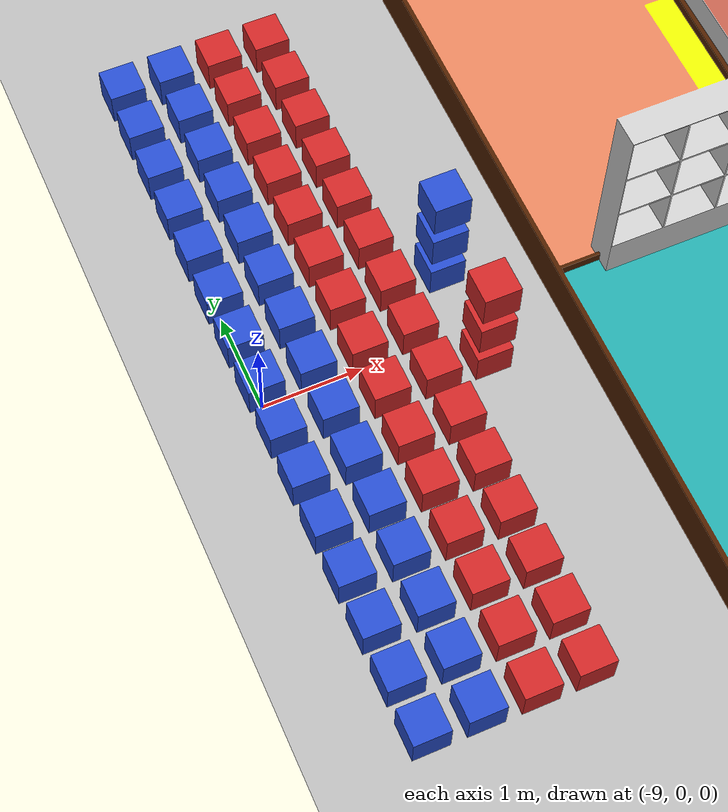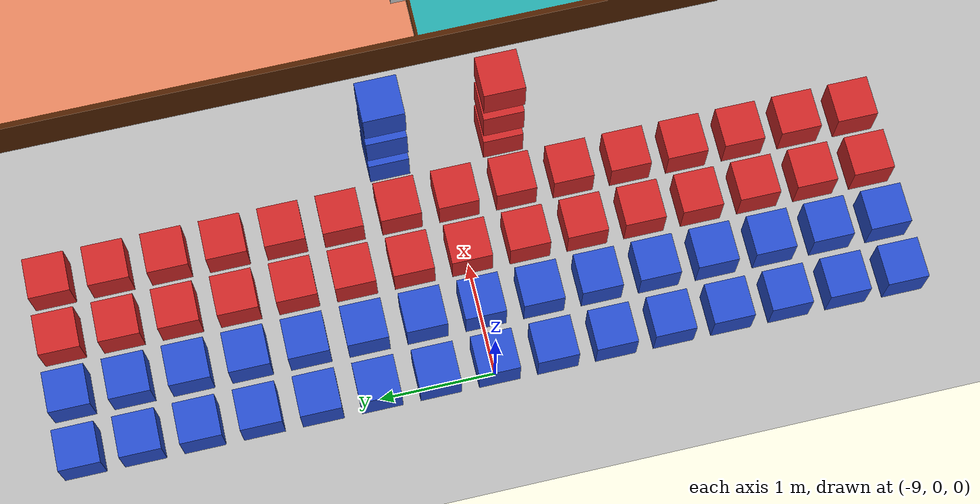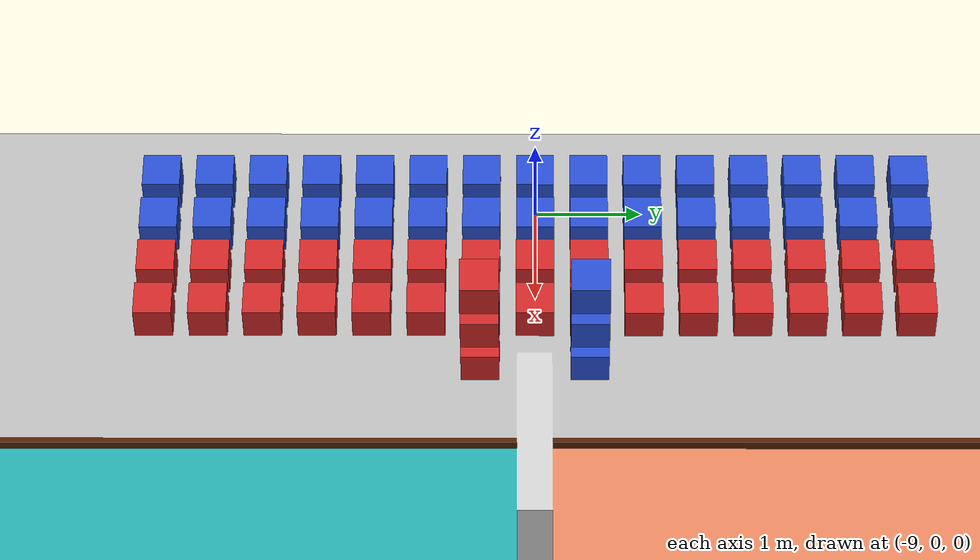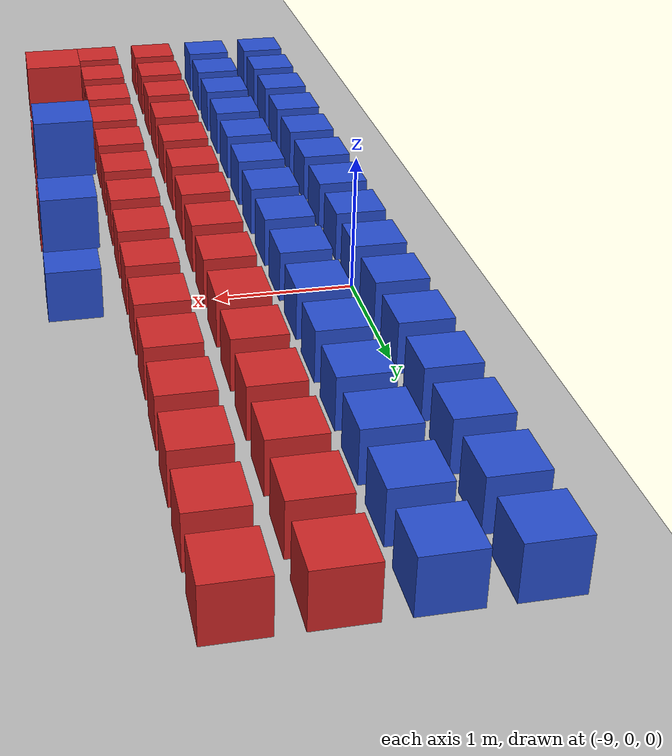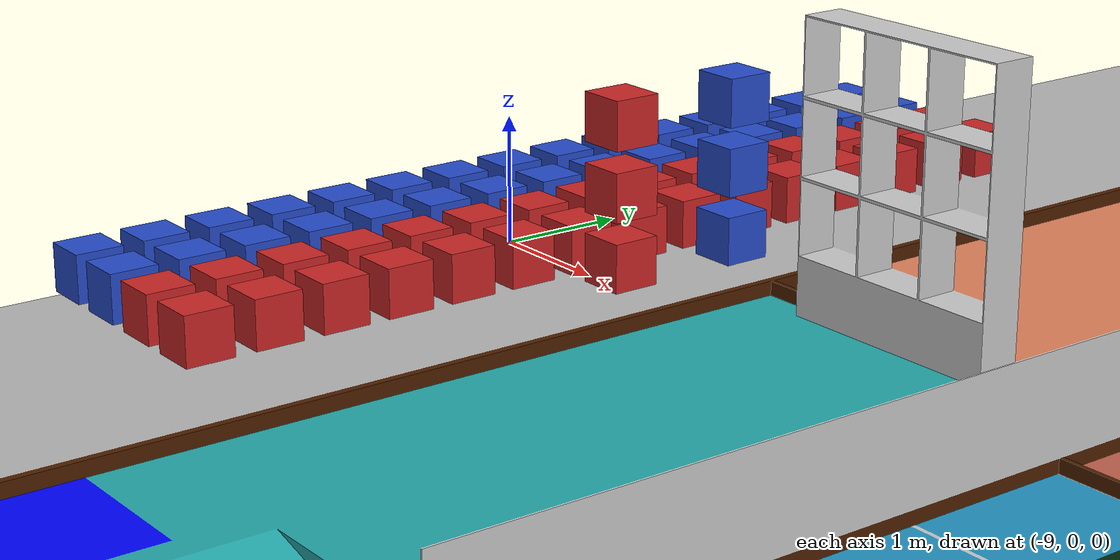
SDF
<sdf version='1.7'>
  <world name='robocon2026_world_scene'>
    <!-- Gazebo ROS State Plugin for set_entity_state service -->
    <plugin name="gazebo_ros_state" filename="libgazebo_ros_state.so">
      <ros>
        <namespace>/</namespace>
      </ros>
      <update_rate>50.0</update_rate>
    </plugin>
    <light name='sun_main1' type='directional'>
      <pose>0 0 20 0 -0 0</pose>
      <diffuse>255 255 255 1</diffuse>
      <specular>0.3 0.3 0.3 1</specular>
      <direction>0.5 0.5 -1</direction>
      <cast_shadows>1</cast_shadows>
      <attenuation>
        <range>1000</range>
        <constant>0.01</constant>
        <linear>0.001</linear>
        <quadratic>0.00</quadratic>
      </attenuation>
    </light>
    <light name='sun_main2' type='directional'>
      <pose>0 0 20 0 -0 0</pose>
      <diffuse>255 255 255 1</diffuse>
      <specular>0.3 0.3 0.3 1</specular>
      <direction>-0.5 0.5 -1</direction>
      <cast_shadows>1</cast_shadows>
      <attenuation>
        <range>1000</range>
        <constant>0.01</constant>
        <linear>0.001</linear>
        <quadratic>0.00</quadratic>
      </attenuation>
    </light>
    <light name='sun_main3' type='directional'>
      <pose>0 0 20 0 -0 0</pose>
      <diffuse>255 255 255 1</diffuse>
      <specular>0.3 0.3 0.3 1</specular>
      <direction>0.5 -0.5 -1</direction>
      <cast_shadows>1</cast_shadows>
      <attenuation>
        <range>1000</range>
        <constant>0.01</constant>
        <linear>0.001</linear>
        <quadratic>0.00</quadratic>
      </attenuation>
    </light>
    <light name='sun_main4' type='directional'>
      <pose>0 0 20 0 -0 0</pose>
      <diffuse>255 255 255 1</diffuse>
      <specular>0.3 0.3 0.3 1</specular>
      <direction>-0.5 -0.5 -1</direction>
      <cast_shadows>1</cast_shadows>
      <attenuation>
        <range>1000</range>
        <constant>0.01</constant>
        <linear>0.001</linear>
        <quadratic>0.00</quadratic>
      </attenuation>
    </light>
    <scene>
      <ambient>0.2 0.2 0.2 1</ambient>
      <background>0.4 0.4 0.4 1</background>
      <shadows>1</shadows>
    </scene>
    <include>
      <uri>model://robocon2026_world</uri>
      <name>robocon2026_field</name>
      <pose>0 0 0.01 0 -0 0</pose>
      <static>true</static>
    </include>
    <include>
      <uri>model://RedR1KFS</uri>
      <name>RedR1KFS</name>
      <pose>-7.0 -0.5 0.5 0 0 0</pose>
    </include>
    <include>
      <uri>model://RedR1KFS</uri>
      <name>RedR1KFS_2</name>
      <pose>-7.0 -0.5 1.0 0 0 0</pose>
    </include>
    <include>
      <uri>model://RedR1KFS</uri>
      <name>RedR1KFS_3</name>
      <pose>-7.0 -0.5 1.5 0 0 0</pose>
    </include>
    <include>
      <uri>model://BlueR1KFS</uri>
      <name>BlueR1KFS</name>
      <pose>-7.0 0.5 0.5 0 0 0</pose>
    </include>
    <include>
      <uri>model://BlueR1KFS</uri>
      <name>BlueR1KFS_2</name>
      <pose>-7.0 0.5 1.0 0 0 0</pose>
    </include>
    <include>
      <uri>model://BlueR1KFS</uri>
      <name>BlueR1KFS_3</name>
      <pose>-7.0 0.5 1.5 0 0 0</pose>
    </include>
    <include>
      <uri>model://RedTrueKFS01</uri>
      <name>RedTrueKFS01</name>
      <pose>-7.5 -3.50 0.5 0 0 0</pose>
    </include>
    <include>
      <uri>model://RedTrueKFS02</uri>
      <name>RedTrueKFS02</name>
      <pose>-7.5 -3.00 0.5 0 0 0</pose>
    </include>
    <include>
      <uri>model://RedTrueKFS03</uri>
      <name>RedTrueKFS03</name>
      <pose>-7.5 -2.50 0.5 0 0 0</pose>
    </include>
    <include>
      <uri>model://RedTrueKFS04</uri>
      <name>RedTrueKFS04</name>
      <pose>-7.5 -2.00 0.5 0 0 0</pose>
    </include>
    <include>
      <uri>model://RedTrueKFS05</uri>
      <name>RedTrueKFS05</name>
      <pose>-7.5 -1.50 0.5 0 0 0</pose>
    </include>
    <include>
      <uri>model://RedTrueKFS06</uri>
      <name>RedTrueKFS06</name>
      <pose>-7.5 -1.00 0.5 0 0 0</pose>
    </include>
    <include>
      <uri>model://RedTrueKFS07</uri>
      <name>RedTrueKFS07</name>
      <pose>-7.5 -0.50 0.5 0 0 0</pose>
    </include>
    <include>
      <uri>model://RedTrueKFS08</uri>
      <name>RedTrueKFS08</name>
      <pose>-7.5 0.00 0.5 0 0 0</pose>
    </include>
    <include>
      <uri>model://RedTrueKFS09</uri>
      <name>RedTrueKFS09</name>
      <pose>-7.5 0.50 0.5 0 0 0</pose>
    </include>
    <include>
      <uri>model://RedTrueKFS10</uri>
      <name>RedTrueKFS10</name>
      <pose>-7.5 1.00 0.5 0 0 0</pose>
    </include>
    <include>
      <uri>model://RedTrueKFS11</uri>
      <name>RedTrueKFS11</name>
      <pose>-7.5 1.50 0.5 0 0 0</pose>
    </include>
    <include>
      <uri>model://RedTrueKFS12</uri>
      <name>RedTrueKFS12</name>
      <pose>-7.5 2.00 0.5 0 0 0</pose>
    </include>
    <include>
      <uri>model://RedTrueKFS13</uri>
      <name>RedTrueKFS13</name>
      <pose>-7.5 2.50 0.5 0 0 0</pose>
    </include>
    <include>
      <uri>model://RedTrueKFS14</uri>
      <name>RedTrueKFS14</name>
      <pose>-7.5 3.00 0.5 0 0 0</pose>
    </include>
    <include>
      <uri>model://RedTrueKFS15</uri>
      <name>RedTrueKFS15</name>
      <pose>-7.5 3.50 0.5 0 0 0</pose>
    </include>
    <include>
      <uri>model://RedFakeKFS01</uri>
      <name>RedFakeKFS01</name>
      <pose>-8.0 -3.50 0.5 0 0 0</pose>
    </include>
    <include>
      <uri>model://RedFakeKFS02</uri>
      <name>RedFakeKFS02</name>
      <pose>-8.0 -3.00 0.5 0 0 0</pose>
    </include>
    <include>
      <uri>model://RedFakeKFS03</uri>
      <name>RedFakeKFS03</name>
      <pose>-8.0 -2.50 0.5 0 0 0</pose>
    </include>
    <include>
      <uri>model://RedFakeKFS04</uri>
      <name>RedFakeKFS04</name>
      <pose>-8.0 -2.00 0.5 0 0 0</pose>
    </include>
    <include>
      <uri>model://RedFakeKFS05</uri>
      <name>RedFakeKFS05</name>
      <pose>-8.0 -1.50 0.5 0 0 0</pose>
    </include>
    <include>
      <uri>model://RedFakeKFS06</uri>
      <name>RedFakeKFS06</name>
      <pose>-8.0 -1.00 0.5 0 0 0</pose>
    </include>
    <include>
      <uri>model://RedFakeKFS07</uri>
      <name>RedFakeKFS07</name>
      <pose>-8.0 -0.50 0.5 0 0 0</pose>
    </include>
    <include>
      <uri>model://RedFakeKFS08</uri>
      <name>RedFakeKFS08</name>
      <pose>-8.0 0.00 0.5 0 0 0</pose>
    </include>
    <include>
      <uri>model://RedFakeKFS09</uri>
      <name>RedFakeKFS09</name>
      <pose>-8.0 0.50 0.5 0 0 0</pose>
    </include>
    <include>
      <uri>model://RedFakeKFS10</uri>
      <name>RedFakeKFS10</name>
      <pose>-8.0 1.00 0.5 0 0 0</pose>
    </include>
    <include>
      <uri>model://RedFakeKFS11</uri>
      <name>RedFakeKFS11</name>
      <pose>-8.0 1.50 0.5 0 0 0</pose>
    </include>
    <include>
      <uri>model://RedFakeKFS12</uri>
      <name>RedFakeKFS12</name>
      <pose>-8.0 2.00 0.5 0 0 0</pose>
    </include>
    <include>
      <uri>model://RedFakeKFS13</uri>
      <name>RedFakeKFS13</name>
      <pose>-8.0 2.50 0.5 0 0 0</pose>
    </include>
    <include>
      <uri>model://RedFakeKFS14</uri>
      <name>RedFakeKFS14</name>
      <pose>-8.0 3.00 0.5 0 0 0</pose>
    </include>
    <include>
      <uri>model://RedFakeKFS15</uri>
      <name>RedFakeKFS15</name>
      <pose>-8.0 3.50 0.5 0 0 0</pose>
    </include>
    <include>
      <uri>model://BlueTrueKFS01</uri>
      <name>BlueTrueKFS01</name>
      <pose>-8.5 -3.50 0.5 0 0 0</pose>
    </include>
    <include>
      <uri>model://BlueTrueKFS02</uri>
      <name>BlueTrueKFS02</name>
      <pose>-8.5 -3.00 0.5 0 0 0</pose>
    </include>
    <include>
      <uri>model://BlueTrueKFS03</uri>
      <name>BlueTrueKFS03</name>
      <pose>-8.5 -2.50 0.5 0 0 0</pose>
    </include>
    <include>
      <uri>model://BlueTrueKFS04</uri>
      <name>BlueTrueKFS04</name>
      <pose>-8.5 -2.00 0.5 0 0 0</pose>
    </include>
    <include>
      <uri>model://BlueTrueKFS05</uri>
      <name>BlueTrueKFS05</name>
      <pose>-8.5 -1.50 0.5 0 0 0</pose>
    </include>
    <include>
      <uri>model://BlueTrueKFS06</uri>
      <name>BlueTrueKFS06</name>
      <pose>-8.5 -1.00 0.5 0 0 0</pose>
    </include>
    <include>
      <uri>model://BlueTrueKFS07</uri>
      <name>BlueTrueKFS07</name>
      <pose>-8.5 -0.50 0.5 0 0 0</pose>
    </include>
    <include>
      <uri>model://BlueTrueKFS08</uri>
      <name>BlueTrueKFS08</name>
      <pose>-8.5 0.00 0.5 0 0 0</pose>
    </include>
    <include>
      <uri>model://BlueTrueKFS09</uri>
      <name>BlueTrueKFS09</name>
      <pose>-8.5 0.50 0.5 0 0 0</pose>
    </include>
    <include>
      <uri>model://BlueTrueKFS10</uri>
      <name>BlueTrueKFS10</name>
      <pose>-8.5 1.00 0.5 0 0 0</pose>
    </include>
    <include>
      <uri>model://BlueTrueKFS11</uri>
      <name>BlueTrueKFS11</name>
      <pose>-8.5 1.50 0.5 0 0 0</pose>
    </include>
    <include>
      <uri>model://BlueTrueKFS12</uri>
      <name>BlueTrueKFS12</name>
      <pose>-8.5 2.00 0.5 0 0 0</pose>
    </include>
    <include>
      <uri>model://BlueTrueKFS13</uri>
      <name>BlueTrueKFS13</name>
      <pose>-8.5 2.50 0.5 0 0 0</pose>
    </include>
    <include>
      <uri>model://BlueTrueKFS14</uri>
      <name>BlueTrueKFS14</name>
      <pose>-8.5 3.00 0.5 0 0 0</pose>
    </include>
    <include>
      <uri>model://BlueTrueKFS15</uri>
      <name>BlueTrueKFS15</name>
      <pose>-8.5 3.50 0.5 0 0 0</pose>
    </include>
    <include>
      <uri>model://BlueFakeKFS01</uri>
      <name>BlueFakeKFS01</name>
      <pose>-9.0 -3.50 0.5 0 0 0</pose>
    </include>
    <include>
      <uri>model://BlueFakeKFS02</uri>
      <name>BlueFakeKFS02</name>
      <pose>-9.0 -3.00 0.5 0 0 0</pose>
    </include>
    <include>
      <uri>model://BlueFakeKFS03</uri>
      <name>BlueFakeKFS03</name>
      <pose>-9.0 -2.50 0.5 0 0 0</pose>
    </include>
    <include>
      <uri>model://BlueFakeKFS04</uri>
      <name>BlueFakeKFS04</name>
      <pose>-9.0 -2.00 0.5 0 0 0</pose>
    </include>
    <include>
      <uri>model://BlueFakeKFS05</uri>
      <name>BlueFakeKFS05</name>
      <pose>-9.0 -1.50 0.5 0 0 0</pose>
    </include>
    <include>
      <uri>model://BlueFakeKFS06</uri>
      <name>BlueFakeKFS06</name>
      <pose>-9.0 -1.00 0.5 0 0 0</pose>
    </include>
    <include>
      <uri>model://BlueFakeKFS07</uri>
      <name>BlueFakeKFS07</name>
      <pose>-9.0 -0.50 0.5 0 0 0</pose>
    </include>
    <include>
      <uri>model://BlueFakeKFS08</uri>
      <name>BlueFakeKFS08</name>
      <pose>-9.0 0.00 0.5 0 0 0</pose>
    </include>
    <include>
      <uri>model://BlueFakeKFS09</uri>
      <name>BlueFakeKFS09</name>
      <pose>-9.0 0.50 0.5 0 0 0</pose>
    </include>
    <include>
      <uri>model://BlueFakeKFS10</uri>
      <name>BlueFakeKFS10</name>
      <pose>-9.0 1.00 0.5 0 0 0</pose>
    </include>
    <include>
      <uri>model://BlueFakeKFS11</uri>
      <name>BlueFakeKFS11</name>
      <pose>-9.0 1.50 0.5 0 0 0</pose>
    </include>
    <include>
      <uri>model://BlueFakeKFS12</uri>
      <name>BlueFakeKFS12</name>
      <pose>-9.0 2.00 0.5 0 0 0</pose>
    </include>
    <include>
      <uri>model://BlueFakeKFS13</uri>
      <name>BlueFakeKFS13</name>
      <pose>-9.0 2.50 0.5 0 0 0</pose>
    </include>
    <include>
      <uri>model://BlueFakeKFS14</uri>
      <name>BlueFakeKFS14</name>
      <pose>-9.0 3.00 0.5 0 0 0</pose>
    </include>
    <include>
      <uri>model://BlueFakeKFS15</uri>
      <name>BlueFakeKFS15</name>
      <pose>-9.0 3.50 0.5 0 0 0</pose>
    </include>

</world>
</sdf>
